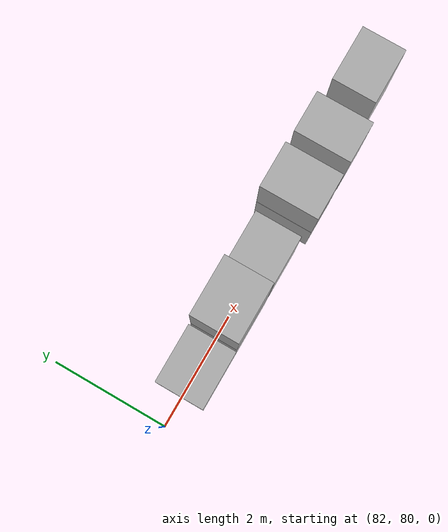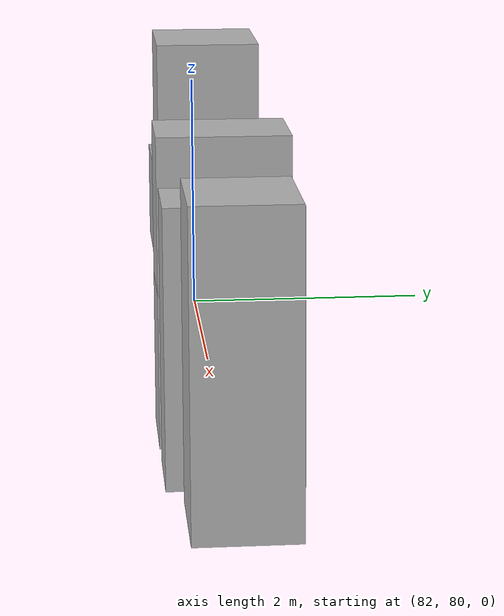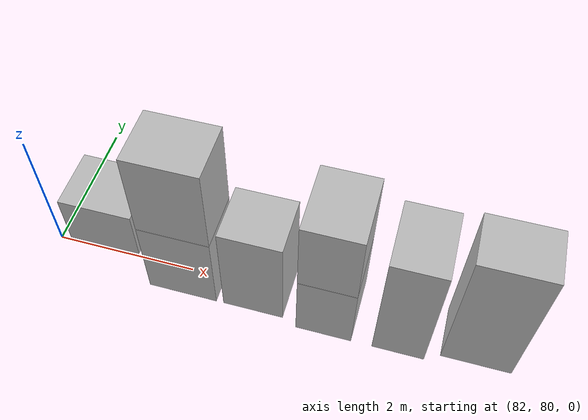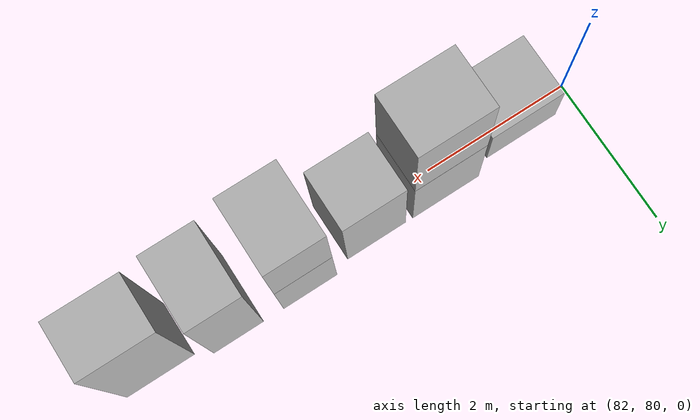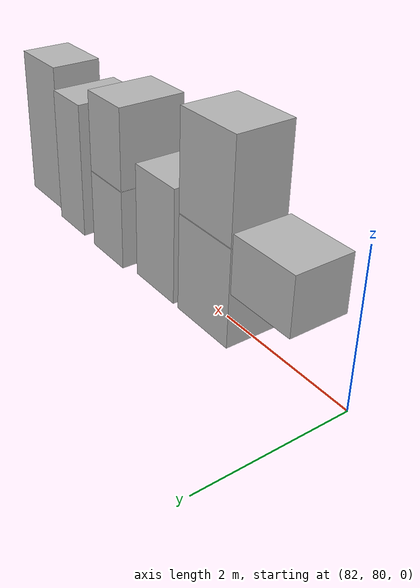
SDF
<sdf version="1.5">
 <world name="default">
  <model name="ground_plane">
   <static>true</static>
   <link name="link">
    <collision name="collision">
     <geometry><plane><normal>0 0 1</normal><size>250 250</size></plane></geometry>
     <surface><friction><ode><mu>1</mu><mu2>1</mu2></ode></friction></surface>
    </collision>
    <visual name="grass">
     <cast_shadows>false</cast_shadows>
     <geometry><mesh><uri>file://grass_plane/meshes/grass_plane.dae</uri></mesh></geometry>
    </visual>
   </link>
  </model>
  <model name="Cardboard_box_top_323">
   <link name="link_0">
    <pose>83 80 0.766119457296 0 0 0</pose>
    <inertial>
     <mass>1</mass>
     <inertia>
      <ixx>0.166667</ixx>
      <ixy>0</ixy>
      <ixz>0</ixz>
      <iyy>0.166667</iyy>
      <iyz>0</iyz>
      <izz>0.166667</izz>
     </inertia>
    </inertial>
    <collision name="collision">
     <geometry>
      <mesh>
       <uri>model://Cardboard_box/meshes/cardboard_box.dae</uri>
       <scale>2.42443792642 2.02095631707 1.91529864324</scale>
      </mesh>
     </geometry>
    </collision>
    <visual name="visual">
     <geometry>
      <mesh>
       <uri>model://Cardboard_box/meshes/cardboard_box.dae</uri>
       <scale>2.42443792642 2.02095631707 1.91529864324</scale>
      </mesh>
     </geometry>
    </visual>
   </link>
   <static>1</static>
  </model>
  <model name="Cardboard_box_324">
   <link name="link_0">
    <pose>84 80 0 0 0 0</pose>
    <inertial>
     <mass>1</mass>
     <inertia>
      <ixx>0.166667</ixx>
      <ixy>0</ixy>
      <ixz>0</ixz>
      <iyy>0.166667</iyy>
      <iyz>0</iyz>
      <izz>0.166667</izz>
     </inertia>
    </inertial>
    <collision name="collision">
     <geometry>
      <mesh>
       <uri>model://Cardboard_box/meshes/cardboard_box.dae</uri>
       <scale>2.42790127181 1.97668261249 3.3099937339</scale>
      </mesh>
     </geometry>
    </collision>
    <visual name="visual">
     <geometry>
      <mesh>
       <uri>model://Cardboard_box/meshes/cardboard_box.dae</uri>
       <scale>2.42790127181 1.97668261249 3.3099937339</scale>
      </mesh>
     </geometry>
    </visual>
   </link>
   <static>1</static>
  </model>
  <model name="Cardboard_box_top_324">
   <link name="link_0">
    <pose>84 80 1.32399749356 0 0 0</pose>
    <inertial>
     <mass>1</mass>
     <inertia>
      <ixx>0.166667</ixx>
      <ixy>0</ixy>
      <ixz>0</ixz>
      <iyy>0.166667</iyy>
      <iyz>0</iyz>
      <izz>0.166667</izz>
     </inertia>
    </inertial>
    <collision name="collision">
     <geometry>
      <mesh>
       <uri>model://Cardboard_box/meshes/cardboard_box.dae</uri>
       <scale>2.42790127181 1.97668261249 3.3099937339</scale>
      </mesh>
     </geometry>
    </collision>
    <visual name="visual">
     <geometry>
      <mesh>
       <uri>model://Cardboard_box/meshes/cardboard_box.dae</uri>
       <scale>2.42790127181 1.97668261249 3.3099937339</scale>
      </mesh>
     </geometry>
    </visual>
   </link>
   <static>1</static>
  </model>
  <model name="Cardboard_box_325">
   <link name="link_0">
    <pose>85 80 0 0 0 0</pose>
    <inertial>
     <mass>1</mass>
     <inertia>
      <ixx>0.166667</ixx>
      <ixy>0</ixy>
      <ixz>0</ixz>
      <iyy>0.166667</iyy>
      <iyz>0</iyz>
      <izz>0.166667</izz>
     </inertia>
    </inertial>
    <collision name="collision">
     <geometry>
      <mesh>
       <uri>model://Cardboard_box/meshes/cardboard_box.dae</uri>
       <scale>2.09486995065 1.95556951921 3.98239124784</scale>
      </mesh>
     </geometry>
    </collision>
    <visual name="visual">
     <geometry>
      <mesh>
       <uri>model://Cardboard_box/meshes/cardboard_box.dae</uri>
       <scale>2.09486995065 1.95556951921 3.98239124784</scale>
      </mesh>
     </geometry>
    </visual>
   </link>
   <static>1</static>
  </model>
  <model name="Cardboard_box_326">
   <link name="link_0">
    <pose>86 80 0 0 0 0</pose>
    <inertial>
     <mass>1</mass>
     <inertia>
      <ixx>0.166667</ixx>
      <ixy>0</ixy>
      <ixz>0</ixz>
      <iyy>0.166667</iyy>
      <iyz>0</iyz>
      <izz>0.166667</izz>
     </inertia>
    </inertial>
    <collision name="collision">
     <geometry>
      <mesh>
       <uri>model://Cardboard_box/meshes/cardboard_box.dae</uri>
       <scale>1.89527472879 2.40278932546 2.8223354338</scale>
      </mesh>
     </geometry>
    </collision>
    <visual name="visual">
     <geometry>
      <mesh>
       <uri>model://Cardboard_box/meshes/cardboard_box.dae</uri>
       <scale>1.89527472879 2.40278932546 2.8223354338</scale>
      </mesh>
     </geometry>
    </visual>
   </link>
   <static>1</static>
  </model>
  <model name="Cardboard_box_top_326">
   <link name="link_0">
    <pose>86 80 1.12893417352 0 0 0</pose>
    <inertial>
     <mass>1</mass>
     <inertia>
      <ixx>0.166667</ixx>
      <ixy>0</ixy>
      <ixz>0</ixz>
      <iyy>0.166667</iyy>
      <iyz>0</iyz>
      <izz>0.166667</izz>
     </inertia>
    </inertial>
    <collision name="collision">
     <geometry>
      <mesh>
       <uri>model://Cardboard_box/meshes/cardboard_box.dae</uri>
       <scale>1.89527472879 2.40278932546 2.8223354338</scale>
      </mesh>
     </geometry>
    </collision>
    <visual name="visual">
     <geometry>
      <mesh>
       <uri>model://Cardboard_box/meshes/cardboard_box.dae</uri>
       <scale>1.89527472879 2.40278932546 2.8223354338</scale>
      </mesh>
     </geometry>
    </visual>
   </link>
   <static>1</static>
  </model>
  <model name="Cardboard_box_327">
   <link name="link_0">
    <pose>87 80 0 0 0 0</pose>
    <inertial>
     <mass>1</mass>
     <inertia>
      <ixx>0.166667</ixx>
      <ixy>0</ixy>
      <ixz>0</ixz>
      <iyy>0.166667</iyy>
      <iyz>0</iyz>
      <izz>0.166667</izz>
     </inertia>
    </inertial>
    <collision name="collision">
     <geometry>
      <mesh>
       <uri>model://Cardboard_box/meshes/cardboard_box.dae</uri>
       <scale>1.73343335389 2.3885117825 4.90769460005</scale>
      </mesh>
     </geometry>
    </collision>
    <visual name="visual">
     <geometry>
      <mesh>
       <uri>model://Cardboard_box/meshes/cardboard_box.dae</uri>
       <scale>1.73343335389 2.3885117825 4.90769460005</scale>
      </mesh>
     </geometry>
    </visual>
   </link>
   <static>1</static>
  </model>
  <model name="Cardboard_box_328">
   <link name="link_0">
    <pose>88 80 0 0 0 0</pose>
    <inertial>
     <mass>1</mass>
     <inertia>
      <ixx>0.166667</ixx>
      <ixy>0</ixy>
      <ixz>0</ixz>
      <iyy>0.166667</iyy>
      <iyz>0</iyz>
      <izz>0.166667</izz>
     </inertia>
    </inertial>
    <collision name="collision">
     <geometry>
      <mesh>
       <uri>model://Cardboard_box/meshes/cardboard_box.dae</uri>
       <scale>2.30519832456 1.8163664228 5.50496991399</scale>
      </mesh>
     </geometry>
    </collision>
    <visual name="visual">
     <geometry>
      <mesh>
       <uri>model://Cardboard_box/meshes/cardboard_box.dae</uri>
       <scale>2.30519832456 1.8163664228 5.50496991399</scale>
      </mesh>
     </geometry>
    </visual>
   </link>
   <static>1</static>
  </model>
 </world>
</sdf>
